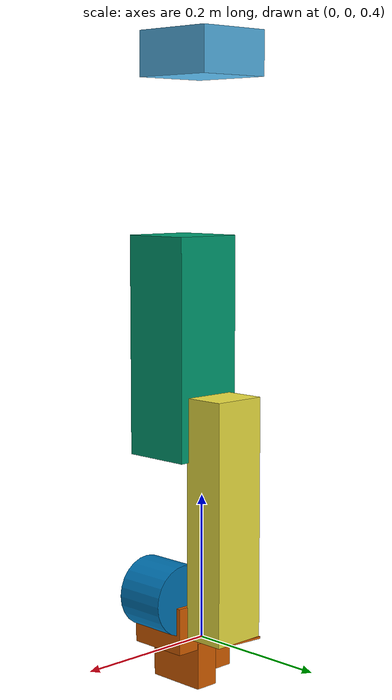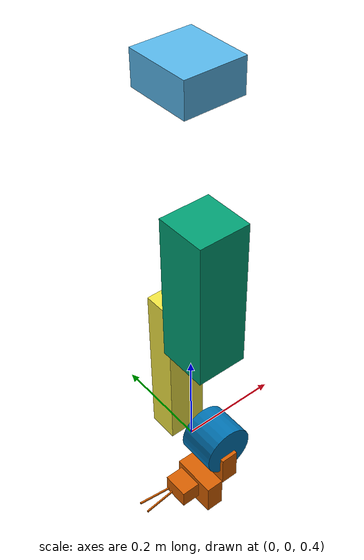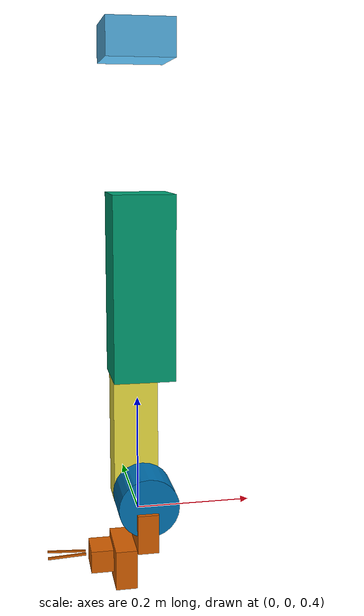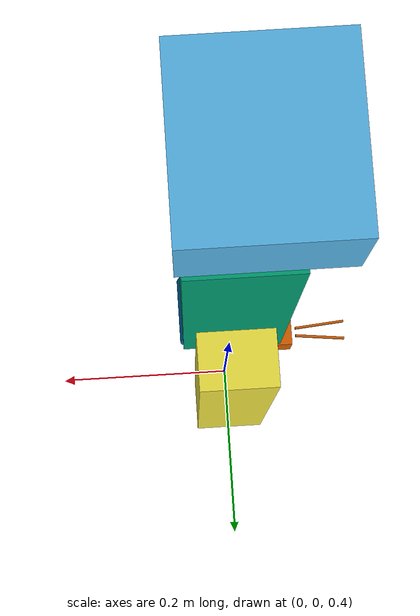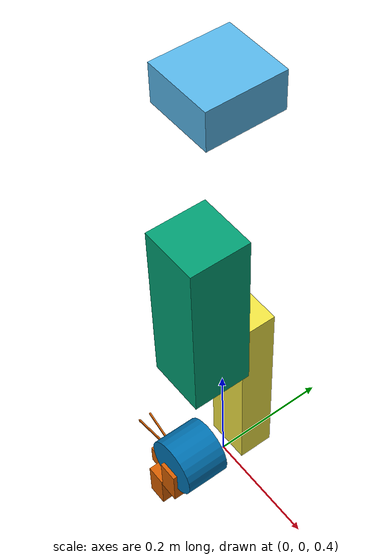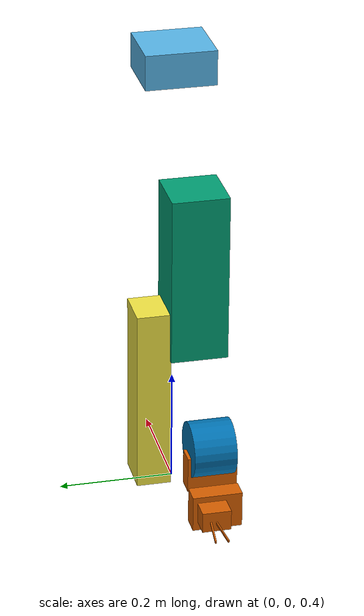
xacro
<?xml version="1.0"?>
<robot xmlns:xacro="http://www.ros.org/wiki/xacro" name="five_dof_arm">

  <link name="base_link" />

  <joint name="joint1" type="prismatic">
    <parent link="base_link" />
    <child link="link1" />
    <axis xyz="0 0 -1" />
    <limit effort="10000.0" lower="-0.38" upper="0.38" velocity="1" />
    <origin rpy="${pi/2} ${pi/2} 0" xyz="0.0 0.0 0.988" />
  </joint>

  <link name="link1">
    <visual>
      <geometry>
        <box size="0.06 0.11 0.12" />
      </geometry>
      <origin rpy="0 0 0" xyz="-0.2 0.0 0.0" />
    </visual>
    <collision>
      <geometry>
        <box size="0.06 0.11 0.12" />
      </geometry>
      <origin rpy="0 0 0" xyz=" -0.2 0.0 0.0" />
    </collision>
    <inertial>
      <mass value="1.0" />
      <origin xyz="0 0 0" rpy="0 0 0" />
      <inertia ixx="1.0" ixy="0.0" ixz="0.0"
        iyy="1.0" iyz="0.0"
        izz="1.0" />
    </inertial>
  </link>

  <joint name="joint2" type="revolute">
    <parent link="link1" />
    <child link="link2" />
    <axis xyz="0 0 1" />
    <limit effort="10000.0" lower="${-90*pi/180}" upper="${90*pi/180}" velocity="2" />
    <origin rpy="0.0 0.0 0.0" xyz="0.057 0.0 0.0" />
  </joint>

  <link name="link2">
    <visual>
      <geometry>
        <box size="0.3 0.1 0.1" />
      </geometry>
      <origin rpy="0 0 0" xyz="0.13 0 0.037 " />
    </visual>
    <collision>
      <geometry>
        <box size="0.3 0.1 0.1" />
      </geometry>
      <origin rpy="0 0 0" xyz="0.13 0 0.037 " />
    </collision>
    <inertial>
      <mass value="1.0" />
      <origin xyz="0 0 0" rpy="0 0 0" />
      <inertia ixx="1.0" ixy="0.0" ixz="0.0"
        iyy="1.0" iyz="0.0"
        izz="1.0" />
    </inertial>
  </link>

  <joint name="joint3" type="revolute">
    <parent link="link2" />
    <child link="link3" />
    <limit effort="10000.0" lower="${-140*pi/180}" upper="${140*pi/180}" velocity="2" />
    <axis xyz="0 0 1" />
    <origin rpy="${180*pi/180} 0 0" xyz="0.250 0.0 -0.0005" />
  </joint>

  <link name="link3">
    <visual>
      <geometry>
        <box size="0.33 0.0773 0.06" />
      </geometry>
      <origin rpy="0 0 0" xyz=" 0.1078 0.001 0.04 " />
    </visual>
    <collision>
      <geometry>
        <box size="0.33 0.0773 0.06" />
      </geometry>
      <origin rpy="0 0 0" xyz="0.0 0.0 0.04 " />
    </collision>
    <inertial>
      <mass value="1.0" />
      <origin xyz="0 0 0" rpy="0 0 0" />
      <inertia ixx="1.0" ixy="0.0" ixz="0.0"
        iyy="1.0" iyz="0.0"
        izz="1.0" />
    </inertial>
  </link>

  <joint name="joint4" type="revolute">
    <parent link="link3" />
    <child link="link4" />
    <limit effort="10000.0" lower="${-128/180*pi}" upper="${+128/180*pi}" velocity="2" />
    <axis xyz="0 0 1" />
    <origin rpy="${180*pi/180} 0 0" xyz="0.250 0 -0.018" />
  </joint>

  <link name="link4">
    <visual>
      <geometry>
        <cylinder radius="0.05" length="0.0766" />
      </geometry>
      <origin rpy="0 0 0" xyz=" -0.0136 0.0028 0.0529 " />
    </visual>
    <collision>
      <geometry>
        <cylinder radius="0.05" length="0.0766" />
      </geometry>
      <origin rpy="0 0 0" xyz=" -0.0136 0.0028 0.0529 " />
    </collision>
    <inertial>
      <mass value="1.0" />
      <origin xyz="0 0 0" rpy="0 0 0" />
      <inertia ixx="1.0" ixy="0.0" ixz="0.0"
        iyy="1.0" iyz="0.0"
        izz="1.0" />
    </inertial>
  </link>

  <joint name="joint5" type="revolute">
    <parent link="link4" />
    <child link="link5" />
    <limit effort="10000.0" lower="${-90*pi/180}" upper="${90*pi/180}" velocity="2" />
    <axis xyz="0 0 1" />
    <origin rpy="${pi/2} 0 ${pi/2}" xyz="0.028 0.0 0.0535" />
  </joint>

  <link name="link5">
    <visual>
      <geometry>
        <box size="0.0351 0.0896 0.066" />
      </geometry>
      <origin rpy="0 0 0" xyz="0 0 0" />
    </visual>
    <visual>
      <geometry>
        <box size="0.0351 0.0896 0.066" />
      </geometry>
      <origin rpy="0 0 0" xyz=" -0.0365 0.001 0.0587 " />
    </visual>
    <visual>
      <geometry>
        <box size="0.0422 0.0519 0.0376" />
      </geometry>
      <origin rpy="0 0 0" xyz=" -0.0702 -0.0096 0.0552 " />
    </visual>
    <visual>
      <geometry>
        <box size="0.0636 0.0026 0.0041" />
      </geometry>
      <origin rpy="0 0 -0.091" xyz=" -0.1295 -0.009 0.0529 " />
    </visual>
    <visual>
      <geometry>
        <box size="0.0636 0.0029 0.0034" />
      </geometry>
      <origin rpy="0 0 -6.171" xyz=" -0.1293 -0.0254 0.0523 " />
    </visual>
    <collision name="box1">
      <geometry>
        <box size="0.0351 0.0896 0.066" />
      </geometry>
      <origin rpy="0 0 0" xyz=" -0.0365 0.001 0.0587 " />
    </collision>
    <collision name="box2">
      <geometry>
        <box size="0.0422 0.0519 0.0376" />
      </geometry>
      <origin rpy="0 0 0" xyz=" -0.0702 -0.0096 0.0552 " />
    </collision>
    <collision name="gripper_left">
      <geometry>
        <box size="0.0636 0.0026 0.0041" />
      </geometry>
      <origin rpy="0 0 -0.091" xyz=" -0.1295 -0.009 0.0529 " />
    </collision>
    <collision name="scissor_left">
      <geometry>
        <box size="0.0636 0.0029 0.0034" />
      </geometry>
      <origin rpy="0 0 -6.171" xyz=" -0.1293 -0.0254 0.0523 " />
    </collision>
    <inertial>
      <mass value="1.0" />
      <origin xyz="0 0 0" rpy="0 0 0" />
      <inertia ixx="1.0" ixy="0.0" ixz="0.0"
        iyy="1.0" iyz="0.0"
        izz="1.0" />
    </inertial>
  </link>

  <joint name="link5_to_EE" type="fixed">
    <parent link="link5" />
    <child link="EE" />
    <origin rpy="${0} 0.0 ${pi}" xyz="-0.160 -0.0175 0.054" />
  </joint>

  <link name="EE" />

</robot>
